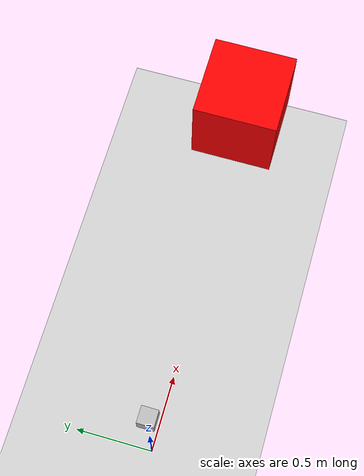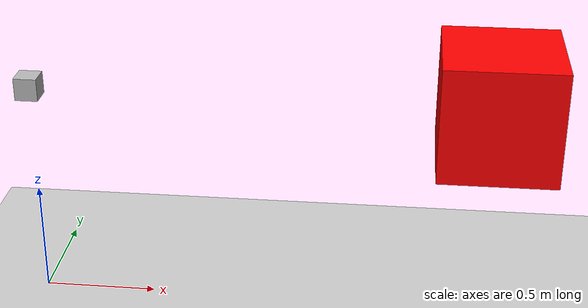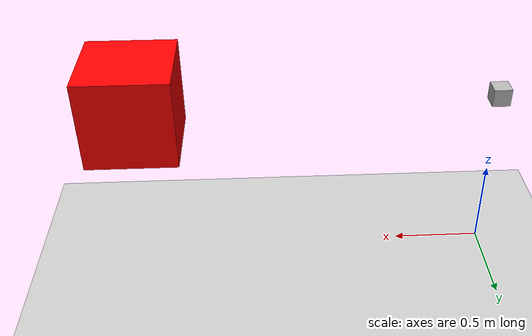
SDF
<?xml version="1.0" ?>
<sdf version="1.6">
  <world name="cube_cam_world">
    <include><uri>model://sun</uri></include>
    <include><uri>model://ground_plane</uri></include>

    <!-- red cube -->
    <model name="red_box">
      <static>true</static>
      <pose>2 0 1 0 0 0</pose>
      <link name="link">
        <collision name="collision">
          <geometry><box><size>0.5 0.5 0.5</size></box></geometry>
        </collision>
        <visual name="visual">
          <geometry><box><size>0.5 0.5 0.5</size></box></geometry>
          <material><diffuse>1 0 0 1</diffuse></material>
        </visual>
      </link>
    </model>

    <!-- camera -->
    <model name="cam">
      <static>false</static>
      <pose>0 0 1 0 0 0</pose>
      <link name="camera_link">
        <visual name="vis">
          <geometry><box><size>0.1 0.1 0.1</size></box></geometry>
        </visual>
        <sensor name="camera" type="camera">
          <always_on>1</always_on>
          <update_rate>30</update_rate>
          <visualize>true</visualize>
          <camera>
            <horizontal_fov>1.3962634</horizontal_fov>
            <image><width>640</width><height>480</height><format>R8G8B8</format></image>
            <clip><near>0.05</near><far>50</far></clip>
          </camera>
        </sensor>
      </link>
    </model>
  </world>
</sdf>
